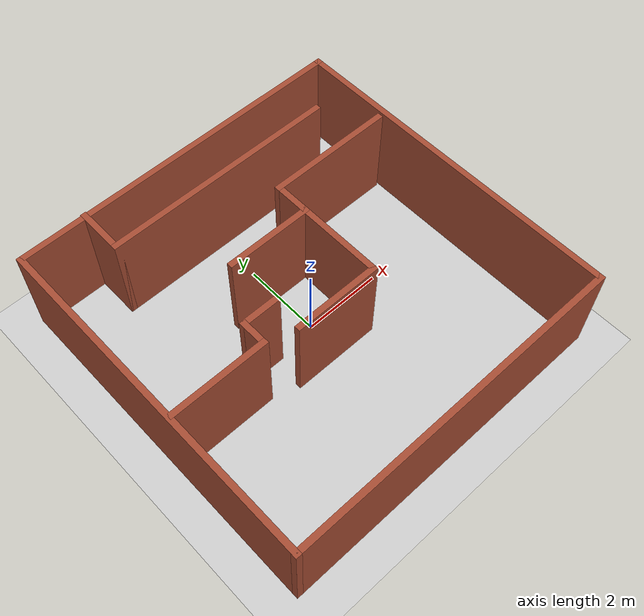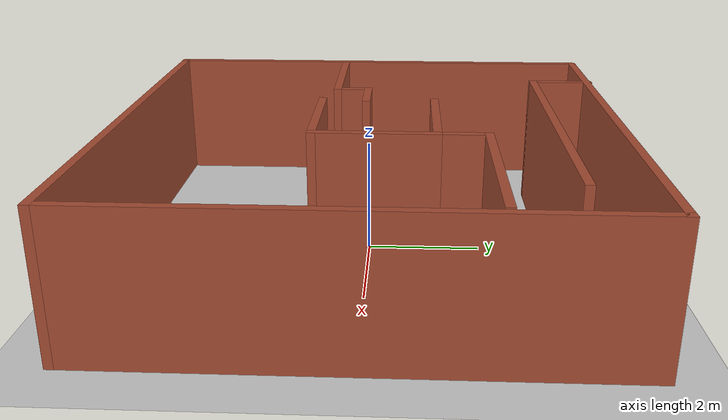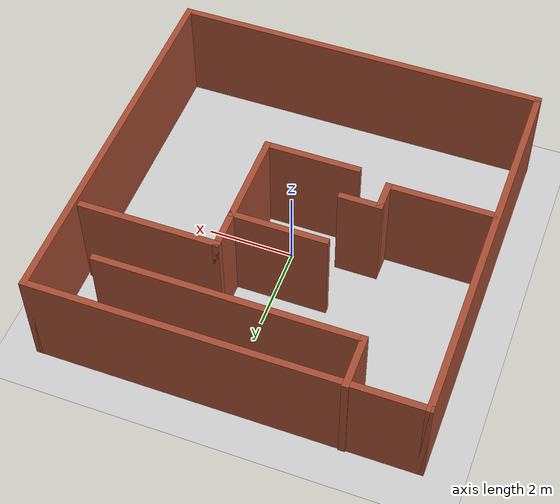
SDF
<sdf version="1.7">
 <world name="default">
  <light name="sun" type="directional">
   <pose>0 0 10 0 -0 0</pose>
   <diffuse>0.8 0.8 0.8 1</diffuse>
   <specular>0.2 0.2 0.2 1</specular>
   <attenuation>
    <range>1000</range>
    <constant>0.9</constant>
    <linear>0.01</linear>
    <quadratic>0.001</quadratic>
   </attenuation>
   <direction>-0.5 0.1 -0.9</direction>
   <spot><inner_angle>0</inner_angle><outer_angle>0</outer_angle><falloff>0</falloff></spot>
  </light>
  <model name="ground_plane">
   <static>1</static>
   <link name="link">
    <collision name="collision">
     <geometry><plane><normal>0 0 1</normal><size>100 100</size></plane></geometry>
     <surface>
      <contact><collide_bitmask>65535</collide_bitmask></contact>
      <friction><ode><mu>100</mu><mu2>50</mu2></ode></friction>
     </surface>
    </collision>
    <visual name="visual">
     <cast_shadows>0</cast_shadows>
     <geometry><plane><normal>0 0 1</normal><size>100 100</size></plane></geometry>
     <material>
      <script><uri>file://media/materials/scripts/gazebo.material</uri><name>Gazebo/Grey</name></script>
     </material>
    </visual>
   </link>
  </model>
  <gravity>0 0 -9.8</gravity>
  <magnetic_field>6e-06 2.3e-05 -4.2e-05</magnetic_field>
  <atmosphere type="adiabatic"/>
  <physics type="ode">
   <max_step_size>0.001</max_step_size>
   <real_time_factor>1</real_time_factor>
   <real_time_update_rate>1000</real_time_update_rate>
  </physics>
  <scene><ambient>0.4 0.4 0.4 1</ambient><background>0.7 0.7 0.7 1</background><shadows>1</shadows></scene>
  <spherical_coordinates>
   <surface_model>EARTH_WGS84</surface_model>
   <latitude_deg>0</latitude_deg>
   <longitude_deg>0</longitude_deg>
   <elevation>0</elevation>
   <heading_deg>0</heading_deg>
  </spherical_coordinates>
  <model name="muchos_obstaculos">
   <pose>-0.069529 -0.001875 0 0 -0 0</pose>
   <link name="Wall_10">
    <collision name="Wall_10_Collision">
     <geometry><box><size>1.25 0.15 2.5</size></box></geometry>
     <pose>0 0 1.25 0 -0 0</pose>
    </collision>
    <visual name="Wall_10_Visual">
     <pose>0 0 1.25 0 -0 0</pose>
     <geometry><box><size>1.25 0.15 2.5</size></box></geometry>
     <material>
      <script><uri>file://media/materials/scripts/gazebo.material</uri><name>Gazebo/Bricks</name></script>
      <ambient>1 1 1 1</ambient>
     </material>
     <meta><layer>0</layer></meta>
    </visual>
    <pose>-2.62419 3.7633 0 0 -0 -1.5708</pose>
   </link>
   <link name="Wall_11">
    <collision name="Wall_11_Collision">
     <geometry><box><size>6 0.15 2.5</size></box></geometry>
     <pose>0 0 1.25 0 -0 0</pose>
    </collision>
    <visual name="Wall_11_Visual">
     <pose>0 0 1.25 0 -0 0</pose>
     <geometry><box><size>6 0.15 2.5</size></box></geometry>
     <material>
      <script><uri>file://media/materials/scripts/gazebo.material</uri><name>Gazebo/Bricks</name></script>
      <ambient>1 1 1 1</ambient>
     </material>
     <meta><layer>0</layer></meta>
    </visual>
    <pose>0.300813 3.2133 0 0 -0 0</pose>
   </link>
   <link name="Wall_13">
    <collision name="Wall_13_Collision">
     <geometry><box><size>2.25 0.15 2.5</size></box></geometry>
     <pose>0 0 1.25 0 -0 0</pose>
    </collision>
    <visual name="Wall_13_Visual">
     <pose>0 0 1.25 0 -0 0</pose>
     <geometry><box><size>2.25 0.15 2.5</size></box></geometry>
     <material>
      <script><uri>file://media/materials/scripts/gazebo.material</uri><name>Gazebo/Bricks</name></script>
      <ambient>1 1 1 1</ambient>
     </material>
     <meta><layer>0</layer></meta>
    </visual>
    <pose>-0.057976 1.17448 0 0 -0 0</pose>
   </link>
   <link name="Wall_14">
    <collision name="Wall_14_Collision">
     <geometry><box><size>2.25 0.15 2.5</size></box></geometry>
     <pose>0 0 1.25 0 -0 0</pose>
    </collision>
    <visual name="Wall_14_Visual">
     <pose>0 0 1.25 0 -0 0</pose>
     <geometry><box><size>2.25 0.15 2.5</size></box></geometry>
     <material>
      <script><uri>file://media/materials/scripts/gazebo.material</uri><name>Gazebo/Bricks</name></script>
      <ambient>1 1 1 1</ambient>
     </material>
     <meta><layer>0</layer></meta>
    </visual>
    <pose>0.992024 0.124477 0 0 -0 -1.5708</pose>
   </link>
   <link name="Wall_15">
    <collision name="Wall_15_Collision">
     <geometry><box><size>2.25 0.15 2.5</size></box></geometry>
     <pose>0 0 1.25 0 -0 0</pose>
    </collision>
    <visual name="Wall_15_Visual">
     <pose>0 0 1.25 0 -0 0</pose>
     <geometry><box><size>2.25 0.15 2.5</size></box></geometry>
     <material>
      <script><uri>file://media/materials/scripts/gazebo.material</uri><name>Gazebo/Bricks</name></script>
      <ambient>1 1 1 1</ambient>
     </material>
     <meta><layer>0</layer></meta>
    </visual>
    <pose>-0.057976 -0.925523 0 0 -0 3.14159</pose>
   </link>
   <link name="Wall_17">
    <collision name="Wall_17_Collision">
     <geometry><box><size>1 0.15 2.5</size></box></geometry>
     <pose>0 0 1.25 0 -0 0</pose>
    </collision>
    <visual name="Wall_17_Visual">
     <pose>0 0 1.25 0 -0 0</pose>
     <geometry><box><size>1 0.15 2.5</size></box></geometry>
     <material>
      <script><uri>file://media/materials/scripts/gazebo.material</uri><name>Gazebo/Bricks</name></script>
      <ambient>1 1 1 1</ambient>
     </material>
     <meta><layer>0</layer></meta>
    </visual>
    <pose>-1.45318 -0.102333 0 0 -0 3.14159</pose>
   </link>
   <link name="Wall_18">
    <collision name="Wall_18_Collision">
     <geometry><box><size>0.75 0.15 2.5</size></box></geometry>
     <pose>0 0 1.25 0 -0 0</pose>
    </collision>
    <visual name="Wall_18_Visual">
     <pose>0 0 1.25 0 -0 0</pose>
     <geometry><box><size>0.75 0.15 2.5</size></box></geometry>
     <material>
      <script><uri>file://media/materials/scripts/gazebo.material</uri><name>Gazebo/Bricks</name></script>
      <ambient>1 1 1 1</ambient>
     </material>
     <meta><layer>0</layer></meta>
    </visual>
    <pose>-1.87818 -0.402333 0 0 -0 -1.5708</pose>
   </link>
   <link name="Wall_19">
    <collision name="Wall_19_Collision">
     <geometry><box><size>2.5 0.15 2.5</size></box></geometry>
     <pose>0 0 1.25 0 -0 0</pose>
    </collision>
    <visual name="Wall_19_Visual">
     <pose>0 0 1.25 0 -0 0</pose>
     <geometry><box><size>2.5 0.15 2.5</size></box></geometry>
     <material>
      <script><uri>file://media/materials/scripts/gazebo.material</uri><name>Gazebo/Bricks</name></script>
      <ambient>1 1 1 1</ambient>
     </material>
     <meta><layer>0</layer></meta>
    </visual>
    <pose>-3.05317 -0.702333 0 0 -0 3.14159</pose>
   </link>
   <link name="Wall_23">
    <collision name="Wall_23_Collision">
     <geometry><box><size>1 0.15 2.5</size></box></geometry>
     <pose>0 0 1.25 0 -0 0</pose>
    </collision>
    <visual name="Wall_23_Visual">
     <pose>0 0 1.25 0 -0 0</pose>
     <geometry><box><size>1 0.15 2.5</size></box></geometry>
     <material>
      <script><uri>file://media/materials/scripts/gazebo.material</uri><name>Gazebo/Bricks</name></script>
      <ambient>1 1 1 1</ambient>
     </material>
     <meta><layer>0</layer></meta>
    </visual>
    <pose>0.992024 1.59948 0 0 -0 1.5708</pose>
   </link>
   <link name="Wall_24">
    <collision name="Wall_24_Collision">
     <geometry><box><size>3.25 0.15 2.5</size></box></geometry>
     <pose>0 0 1.25 0 -0 0</pose>
    </collision>
    <visual name="Wall_24_Visual">
     <pose>0 0 1.25 0 -0 0</pose>
     <geometry><box><size>3.25 0.15 2.5</size></box></geometry>
     <material>
      <script><uri>file://media/materials/scripts/gazebo.material</uri><name>Gazebo/Bricks</name></script>
      <ambient>1 1 1 1</ambient>
     </material>
     <meta><layer>0</layer></meta>
    </visual>
    <pose>2.54202 2.02448 0 0 -0 0</pose>
   </link>
   <link name="Wall_5">
    <collision name="Wall_5_Collision">
     <geometry><box><size>8.75 0.15 2.5</size></box></geometry>
     <pose>0 0 1.25 0 -0 0</pose>
    </collision>
    <visual name="Wall_5_Visual">
     <pose>0 0 1.25 0 -0 0</pose>
     <geometry><box><size>8.75 0.15 2.5</size></box></geometry>
     <material>
      <script><uri>file://media/materials/scripts/gazebo.material</uri><name>Gazebo/Bricks</name></script>
      <ambient>1 1 1 1</ambient>
     </material>
     <meta><layer>0</layer></meta>
    </visual>
    <pose>-0 4.2867 0 0 -0 0</pose>
   </link>
   <link name="Wall_6">
    <collision name="Wall_6_Collision">
     <geometry><box><size>8.75 0.15 2.5</size></box></geometry>
     <pose>0 0 1.25 0 -0 0</pose>
    </collision>
    <visual name="Wall_6_Visual">
     <pose>0 0 1.25 0 -0 0</pose>
     <geometry><box><size>8.75 0.15 2.5</size></box></geometry>
     <material>
      <script><uri>file://media/materials/scripts/gazebo.material</uri><name>Gazebo/Bricks</name></script>
      <ambient>1 1 1 1</ambient>
     </material>
     <meta><layer>0</layer></meta>
    </visual>
    <pose>4.3 -0.0133 0 0 -0 -1.5708</pose>
   </link>
   <link name="Wall_7">
    <collision name="Wall_7_Collision">
     <geometry><box><size>8.75 0.15 2.5</size></box></geometry>
     <pose>0 0 1.25 0 -0 0</pose>
    </collision>
    <visual name="Wall_7_Visual">
     <pose>0 0 1.25 0 -0 0</pose>
     <geometry><box><size>8.75 0.15 2.5</size></box></geometry>
     <material>
      <script><uri>file://media/materials/scripts/gazebo.material</uri><name>Gazebo/Bricks</name></script>
      <ambient>1 1 1 1</ambient>
     </material>
     <meta><layer>0</layer></meta>
    </visual>
    <pose>-0 -4.3133 0 0 -0 3.14159</pose>
   </link>
   <link name="Wall_8">
    <collision name="Wall_8_Collision">
     <geometry><box><size>8.75 0.15 2.5</size></box></geometry>
     <pose>0 0 1.25 0 -0 0</pose>
    </collision>
    <visual name="Wall_8_Visual">
     <pose>0 0 1.25 0 -0 0</pose>
     <geometry><box><size>8.75 0.15 2.5</size></box></geometry>
     <material>
      <script><uri>file://media/materials/scripts/gazebo.material</uri><name>Gazebo/Bricks</name></script>
      <ambient>1 1 1 1</ambient>
     </material>
     <meta><layer>0</layer></meta>
    </visual>
    <pose>-4.3 -0.0133 0 0 -0 1.5708</pose>
   </link>
   <static>1</static>
  </model>
 </world>
</sdf>
